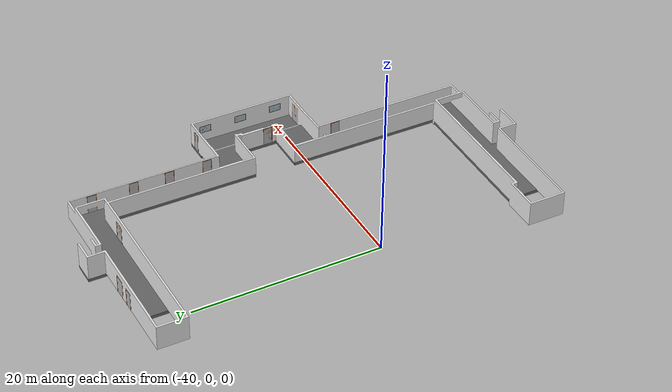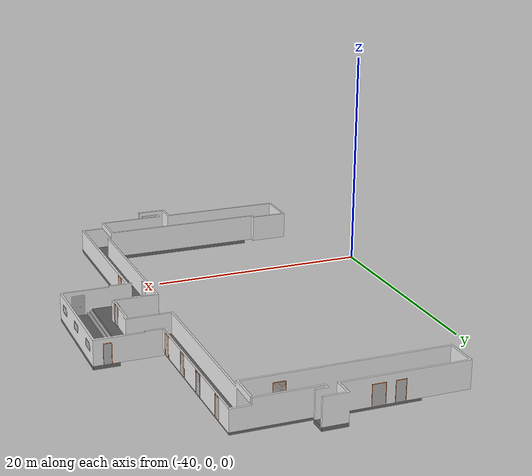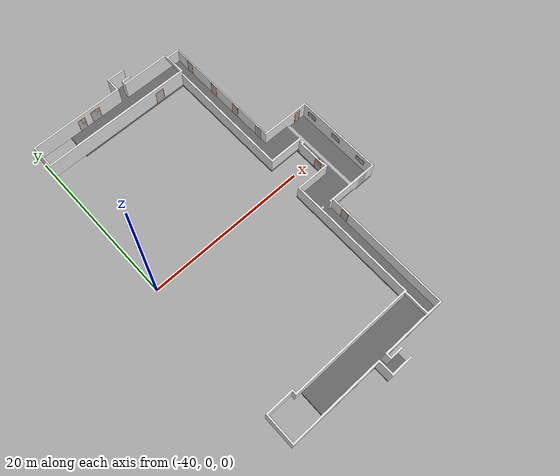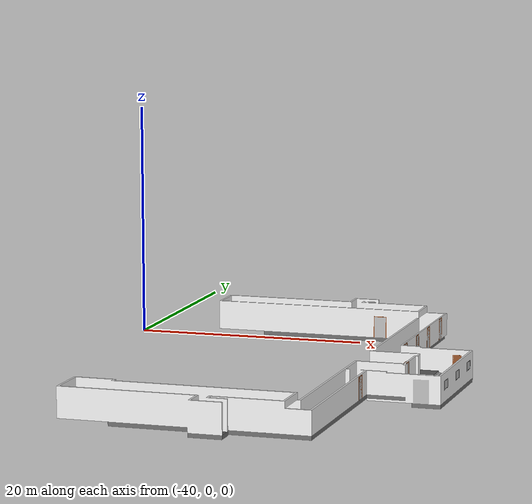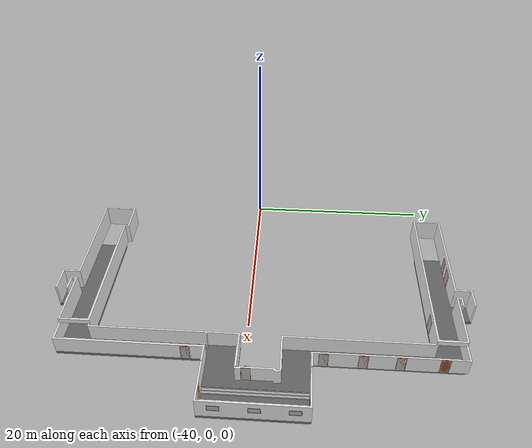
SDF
<?xml version="1.0"?>
<sdf version="1.6">
  <model name="hall">
    <static>true</static>
    <link name="walls">
      <collision name="collision">
        <geometry>
          <mesh>
            <uri>file:///home/go1/Desktop/workspace/unitree_go1/src/unitree_ros2_sim/go1_sim/go1_gazebo/worlds/building_editor_models/hall/meshes/hall.dae</uri>
          </mesh>
        </geometry>
      </collision>
      <visual name="visual">
        <geometry>
          <mesh>
            <uri>file:///home/go1/Desktop/workspace/unitree_go1/src/unitree_ros2_sim/go1_sim/go1_gazebo/worlds/building_editor_models/hall/meshes/hall.dae</uri>
          </mesh>
        </geometry>
        <transparency> 0.1 </transparency>
      </visual>
    </link>
  </model>
</sdf>
